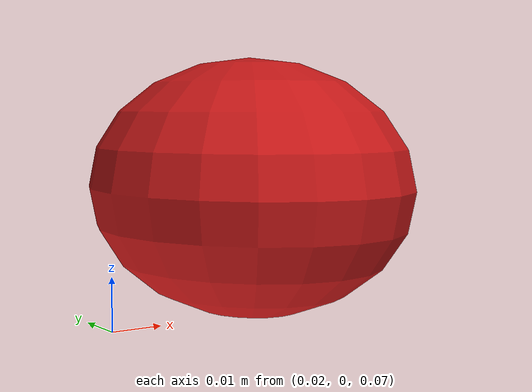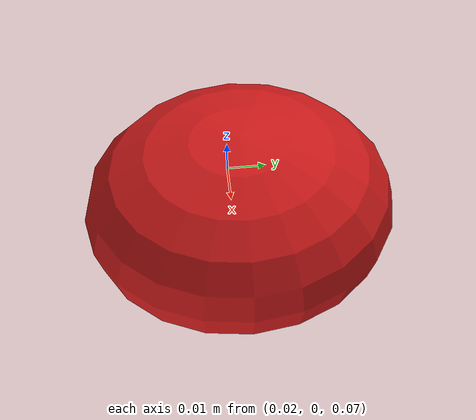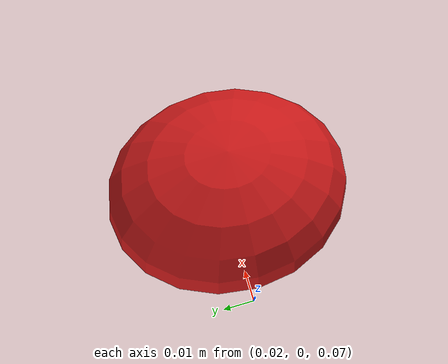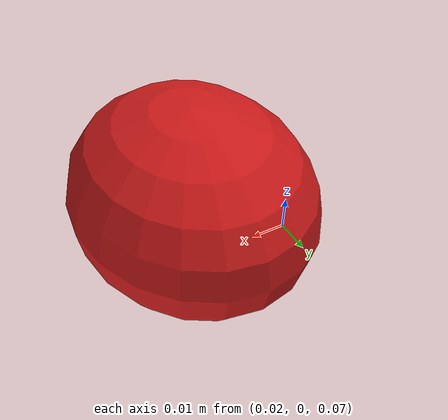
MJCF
<mujoco>
  <!-- Ellipsoid (like apple: asymmetric sphere) -->
  <worldbody>
    <body name="object" pos="0.05 0 0.095">
      <freejoint name="object_joint"/>
      <inertial pos="0 0 0" mass="0.18" diaginertia="8e-5 9e-5 7e-5"/>
      <geom name="object_geom" type="ellipsoid" size="0.03 0.035 0.025"
            rgba="0.8 0.1 0.1 1" contype="1" conaffinity="1"
            friction="1 0.5 0.01"/>
    </body>
  </worldbody>
</mujoco>
